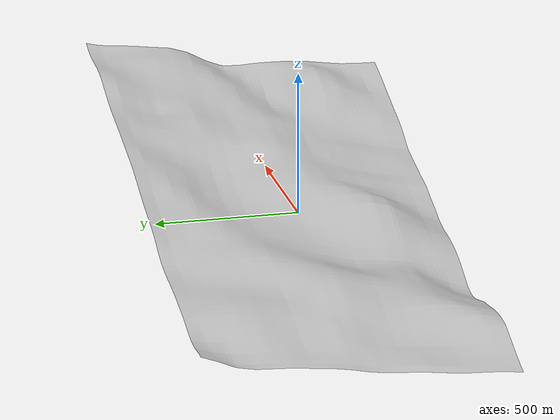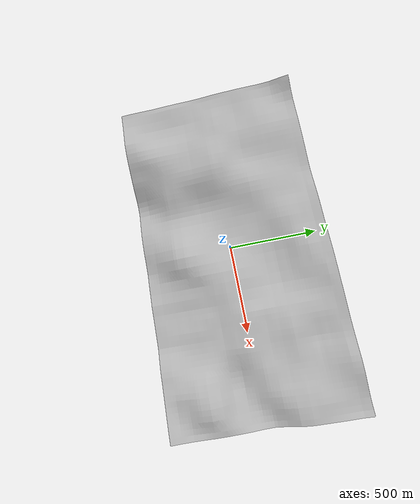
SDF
<?xml version="1.0" ?>
<sdf version="1.4">
  <model name="l2">
	<static>true</static>
	<link name="link">
        <pose>0 0 -140.9 0 0 0</pose>
	    <collision name="my_collision">
		<geometry>
                   <mesh><uri>model://l2/untitled.dae</uri></mesh>
		 </geometry>
	    </collision>

	    <visual name="my_visual">
		<geometry>
                   <mesh><uri>model://l2/untitled.dae</uri></mesh>
		 </geometry>
	    </visual>
	</link>
</model>
</sdf>
